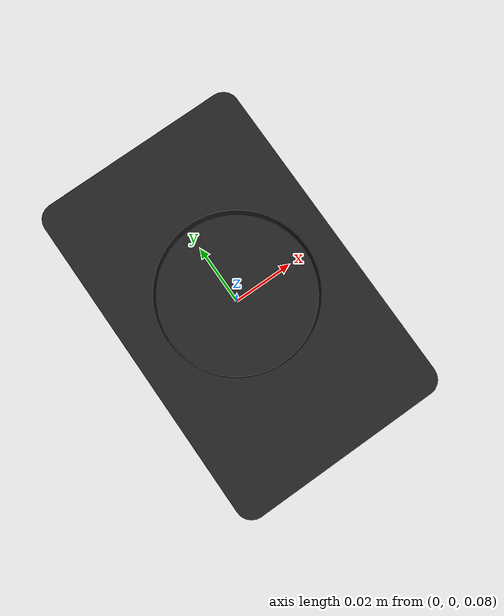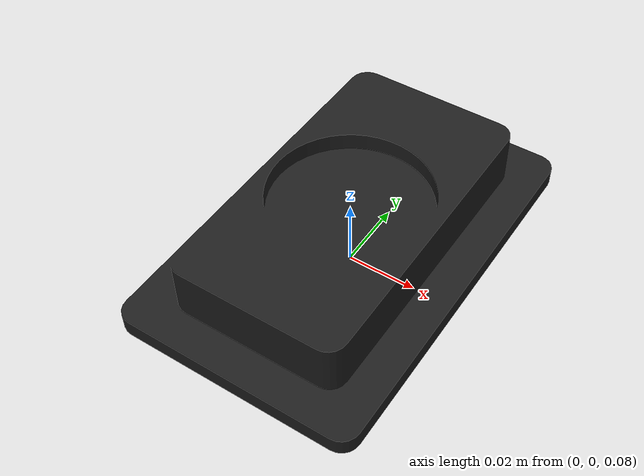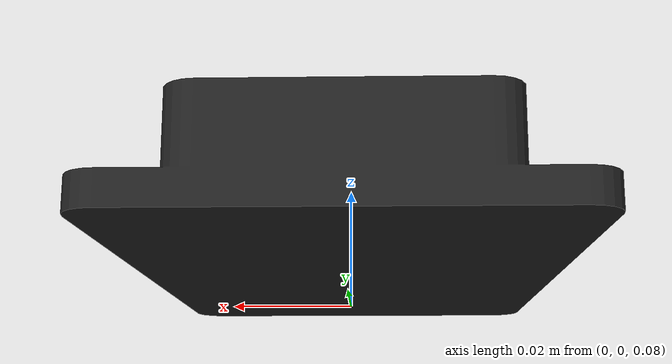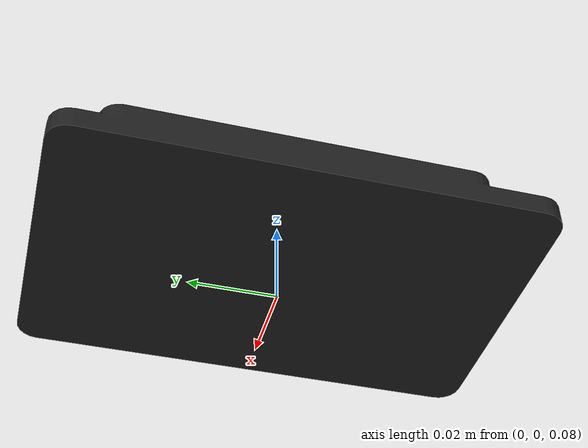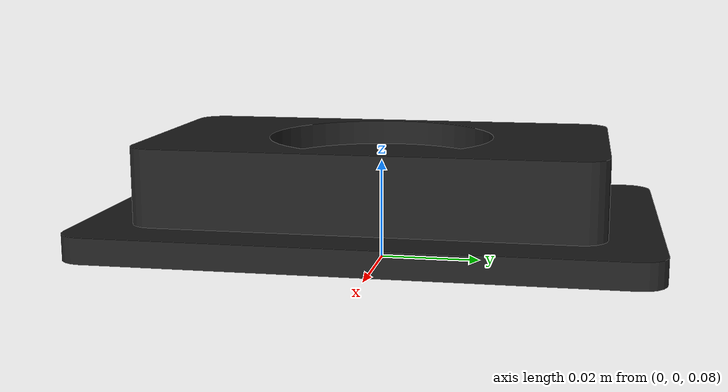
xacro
<?xml version="1.0"?>
<robot xmlns:xacro="http://www.ros.org/wiki/xacro" >

<!--BASE LINK-->

<link name="base_link">
</link>

<!--CHASSIS LINK-->
<joint name="chassis_joint" type="fixed">
    <parent link = "base_link"/>
    <child link = "Chassis"/>
    <origin xyz ="0 0 0"/>
</joint>

<link name = "Chassis">
<visual>
    <origin xyz= "0 0 0.085"/>
    <geometry>
        <mesh filename= "package://description2/meshes/base.stl" scale="0.001 0.001 0.001"/>
    </geometry>
    <material name ="black"/>
</visual>
<collision>
    <origin xyz= "0 0 0.085"/>
    <geometry>
        <box size = "0.69804 0.325 0.17 "/>

    </geometry>
    <material name ="black"/>
    <inertial>
        <mass value="19.928" />
        <origin xyz="0 0 0" />
				<inertia ixx="0.286" ixy="0.0" ixz="0.0"
               iyy="1.109" iyz="0.0"
               izz="1.227" />
      </inertial>
</collision>
</link>

<gazebo reference = "chassis">
    <material>
        Gazebo/White
    </material>
</gazebo>

</robot>
